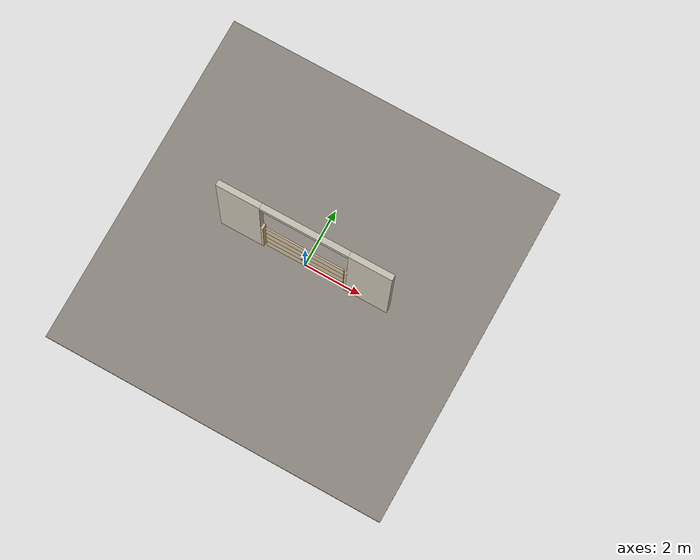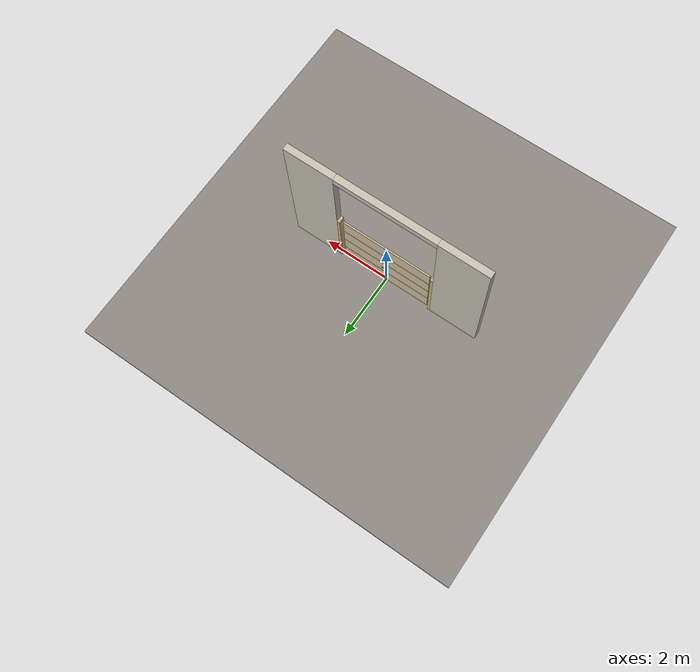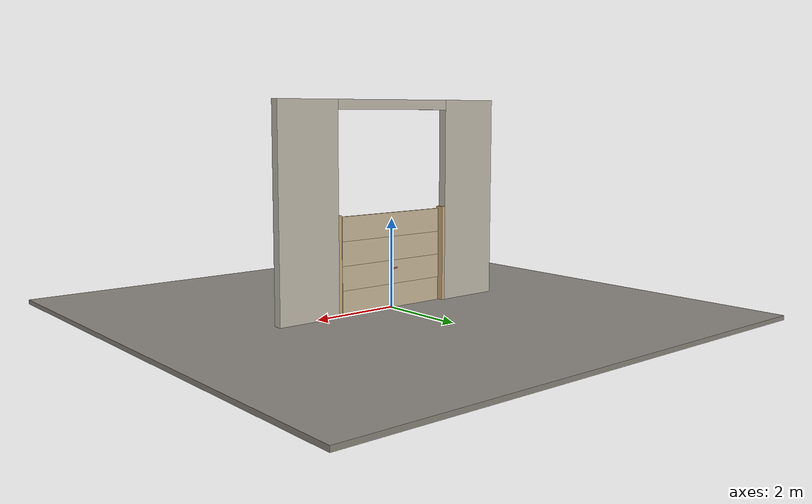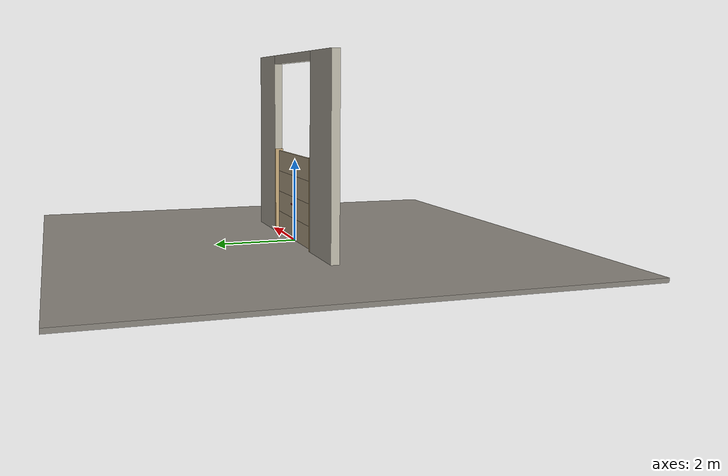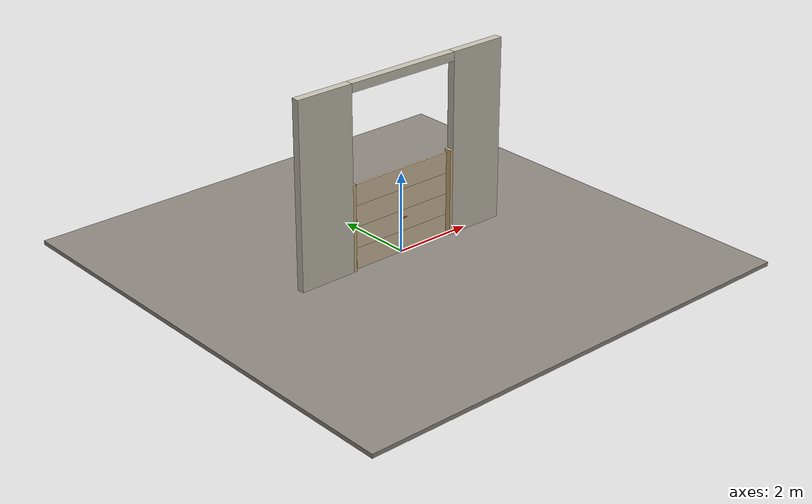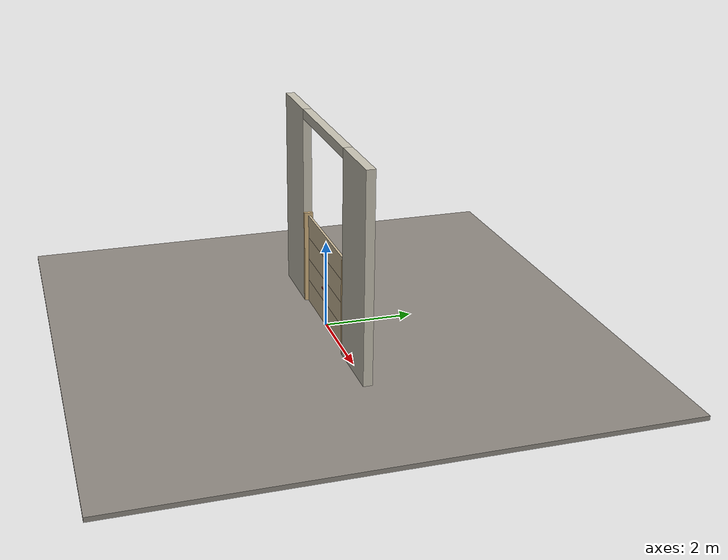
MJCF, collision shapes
<?xml version="1.0" ?>
<mujoco model="db0629_garage_sectional_minimal">
  <compiler angle="radian" meshdir="../../hardware" texturedir="../../textures" autolimits="true" inertiafromgeom="false"/>
  <option timestep="0.002" integrator="implicitfast" cone="elliptic" impratio="10" noslip_iterations="3">
    <flag multiccd="enable"/>
  </option>
  <size memory="16M"/>
  <default>
    <geom condim="4" solref="0.005 1" solimp="0.95 0.99 0.001"/>
    <joint solreflimit="0.005 1" solimplimit="0.95 0.99 0.001"/>
    <tendon solreflimit="0.005 1"/>
    <equality solref="0.002 1"/>
  </default>
  <visual>
    <headlight ambient="0.4 0.4 0.4" diffuse="0.7 0.7 0.7" specular="0.2 0.2 0.2"/>
    <quality shadowsize="4096"/>
    <map znear="0.01" zfar="60"/>
  </visual>
  <asset>
    <mesh name="pull_bdc5e965ab" file="pull_bdc5e965ab.obj"/>
    <material name="mat_floor" rgba="0.55 0.53 0.5 1" specular="0.2" shininess="0.15" reflectance="0"/>
    <material name="mat_wall" rgba="0.78 0.76 0.7 1" specular="0.2" shininess="0.1" reflectance="0"/>
    <material name="mat_frame" rgba="0.82 0.7 0.5 1" specular="0.2" shininess="0.45" reflectance="0"/>
    <material name="mat_track" rgba="0.65 0.66 0.68 1" specular="0.74" shininess="0.5" reflectance="0.36"/>
    <material name="mat_section_0" rgba="0.82 0.75 0.62 1" specular="0.23" shininess="0.49" reflectance="0.02"/>
    <material name="mat_section_0_panel" rgba="0.754 0.69 0.57 1" specular="0.23" shininess="0.49" reflectance="0.02"/>
    <material name="mat_section_1" rgba="0.82 0.75 0.62 1" specular="0.23" shininess="0.49" reflectance="0.02"/>
    <material name="mat_section_1_panel" rgba="0.754 0.69 0.57 1" specular="0.23" shininess="0.49" reflectance="0.02"/>
    <material name="mat_hinge_line" rgba="0.2 0.2 0.2 1" specular="0.2" shininess="0.3" reflectance="0"/>
    <material name="mat_section_2" rgba="0.82 0.75 0.62 1" specular="0.23" shininess="0.49" reflectance="0.02"/>
    <material name="mat_section_2_panel" rgba="0.754 0.69 0.57 1" specular="0.23" shininess="0.49" reflectance="0.02"/>
    <material name="mat_section_3" rgba="0.82 0.75 0.62 1" specular="0.23" shininess="0.49" reflectance="0.02"/>
    <material name="mat_section_3_panel" rgba="0.754 0.69 0.57 1" specular="0.23" shininess="0.49" reflectance="0.02"/>
    <material name="mat_spring" rgba="0.55 0.56 0.58 1" specular="0.8" shininess="0.55" reflectance="0.4"/>
    <material name="mat_opener" rgba="0.05 0.05 0.05 1" specular="0.38" shininess="0.3" reflectance="0.12"/>
    <material name="mat_op_black_matte_metal" rgba="0.05 0.05 0.05 1" specular="0.38" shininess="0.3" reflectance="0.12"/>
    <texture name="skybox" type="skybox" builtin="gradient" rgb1="0.6 0.7 0.85" rgb2="0.9 0.92 0.95" width="256" height="256"/>
  </asset>
  <worldbody>
    <light name="sun" pos="1.5 -2.5 4" dir="-0.3 0.5 -0.8" directional="true" diffuse="0.8 0.8 0.8" specular="0.3 0.3 0.3" castshadow="true"/>
    <light name="fill" pos="-1.5 2.5 3" dir="0.3 -0.5 -0.7" directional="true" diffuse="0.35 0.35 0.4" castshadow="false"/>
    <camera name="robot_view" pos="0 -3.240625 1.997375" xyaxes="1 0 0 0 0.26963 0.962964" fovy="52"/>
    <camera name="far_view" pos="0 3.240625 1.997375" xyaxes="-1 0 0 0 -0.26963 0.962964" fovy="52"/>
    <camera name="iso" pos="2.462875 -2.722125 2.515875" xyaxes="0.741536 0.670913 0 -0.242917 0.268487 0.932151" fovy="46"/>
    <camera name="detail_handle" pos="0.25 -1.175 1.25" xyaxes="0.975133 0.221621 0 -0.065674 0.288965 0.955084" fovy="38"/>
    <geom name="floor" type="box" size="6 6 0.05" pos="0 0 -0.05" material="mat_floor" group="0" contype="1" conaffinity="1" friction="0.8 0.005 0.0001" density="2400"/>
    <geom name="wall_left" type="box" size="0.7425 0.1 2.305" pos="-2.2575 0 2.305" material="mat_wall" group="0" contype="1" conaffinity="1" friction="0.6 0.005 0.0001" density="800"/>
    <geom name="wall_right" type="box" size="0.7425 0.1 2.305" pos="2.2575 0 2.305" material="mat_wall" group="0" contype="1" conaffinity="1" friction="0.6 0.005 0.0001" density="800"/>
    <geom name="wall_header" type="box" size="1.515 0.1 0.11" pos="0 0 4.5" material="mat_wall" group="0" contype="1" conaffinity="1" friction="0.6 0.005 0.0001" density="800"/>
    <geom name="garage_jamb_l" type="box" size="0.04 0.1 1.09" pos="-1.475 0 1.09" material="mat_frame" group="0" contype="1" conaffinity="1" friction="0.6 0.005 0.0001" density="400"/>
    <geom name="garage_jamb_r" type="box" size="0.04 0.1 1.09" pos="1.475 0 1.09" material="mat_frame" group="0" contype="1" conaffinity="1" friction="0.6 0.005 0.0001" density="400"/>
    <site name="approach_point" pos="0 -2 0" quat="1 0 0 0" size="0.05" rgba="0.2 0.9 0.2 0.5" group="4"/>
    <site name="goal_point" pos="0 2 0" quat="1 0 0 0" size="0.05" rgba="0.2 0.9 0.2 0.5" group="4"/>
    <site name="door_plane_center" pos="0 0 1.09" quat="1 0 0 0" size="0.02" rgba="0.2 0.9 0.2 0.5" group="4"/>
    <body name="door" pos="0 0 0">
      <inertial pos="0 0 1.072758" mass="78.529822" quat="0 0 0.707107 0.707107" diaginertia="29.36108423 48.527032946 77.846582486"/>
      <joint name="door_slide" type="slide" axis="0 0 1" limited="true" range="0 0.003" damping="5.926491" frictionloss="15.40229" armature="0.5"/>
      <geom name="section_0_slab" type="box" size="1.37 0.025 0.26625" pos="0 0 0.27625" material="mat_section_0" group="0" contype="1" conaffinity="1" friction="0.4 0.005 0.0001" density="1"/>
      <geom name="section_1_slab" type="box" size="1.37 0.025 0.26625" pos="0 0 0.80875" material="mat_section_1" group="0" contype="1" conaffinity="1" friction="0.4 0.005 0.0001" density="1"/>
      <geom name="section_2_slab" type="box" size="1.37 0.025 0.26625" pos="0 0 1.34125" material="mat_section_2" group="0" contype="1" conaffinity="1" friction="0.4 0.005 0.0001" density="1"/>
      <geom name="section_3_slab" type="box" size="1.37 0.025 0.26625" pos="0 0 1.87375" material="mat_section_3" group="0" contype="1" conaffinity="1" friction="0.4 0.005 0.0001" density="1"/>
      <geom name="lift_handle_n" type="mesh" mesh="pull_bdc5e965ab" pos="0 -0.025 0.9" quat="0.707107 0.707107 0 0" material="mat_op_black_matte_metal" group="1" contype="0" conaffinity="0" density="3000"/>
      <geom name="lift_handle_col_n" type="box" size="0.1 0.006 0.015" pos="0 -0.075 0.9" material="mat_op_black_matte_metal" group="3" contype="1" conaffinity="1" rgba="0.8 0.3 0.3 0.25" friction="0.6 0.005 0.0001" density="3000"/>
      <geom name="lift_handle_p" type="mesh" mesh="pull_bdc5e965ab" pos="0 0.025 0.9" quat="-0.707107 0.707107 0 0" material="mat_op_black_matte_metal" group="1" contype="0" conaffinity="0" density="3000"/>
      <geom name="lift_handle_col_p" type="box" size="0.1 0.006 0.015" pos="0 0.075 0.9" material="mat_op_black_matte_metal" group="3" contype="1" conaffinity="1" rgba="0.8 0.3 0.3 0.25" friction="0.6 0.005 0.0001" density="3000"/>
      <site name="lift_handle_grip_n" pos="0 -0.075 0.9" quat="1 0 0 0" size="0.012" rgba="0.2 0.9 0.2 0.5" group="4"/>
      <site name="lift_handle_grip_p" pos="0 0.075 0.9" quat="1 0 0 0" size="0.012" rgba="0.2 0.9 0.2 0.5" group="4"/>
    </body>
  </worldbody>
  <sensor>
    <jointpos name="door_slide_pos" joint="door_slide"/>
    <jointvel name="door_slide_vel" joint="door_slide"/>
  </sensor>
</mujoco>
